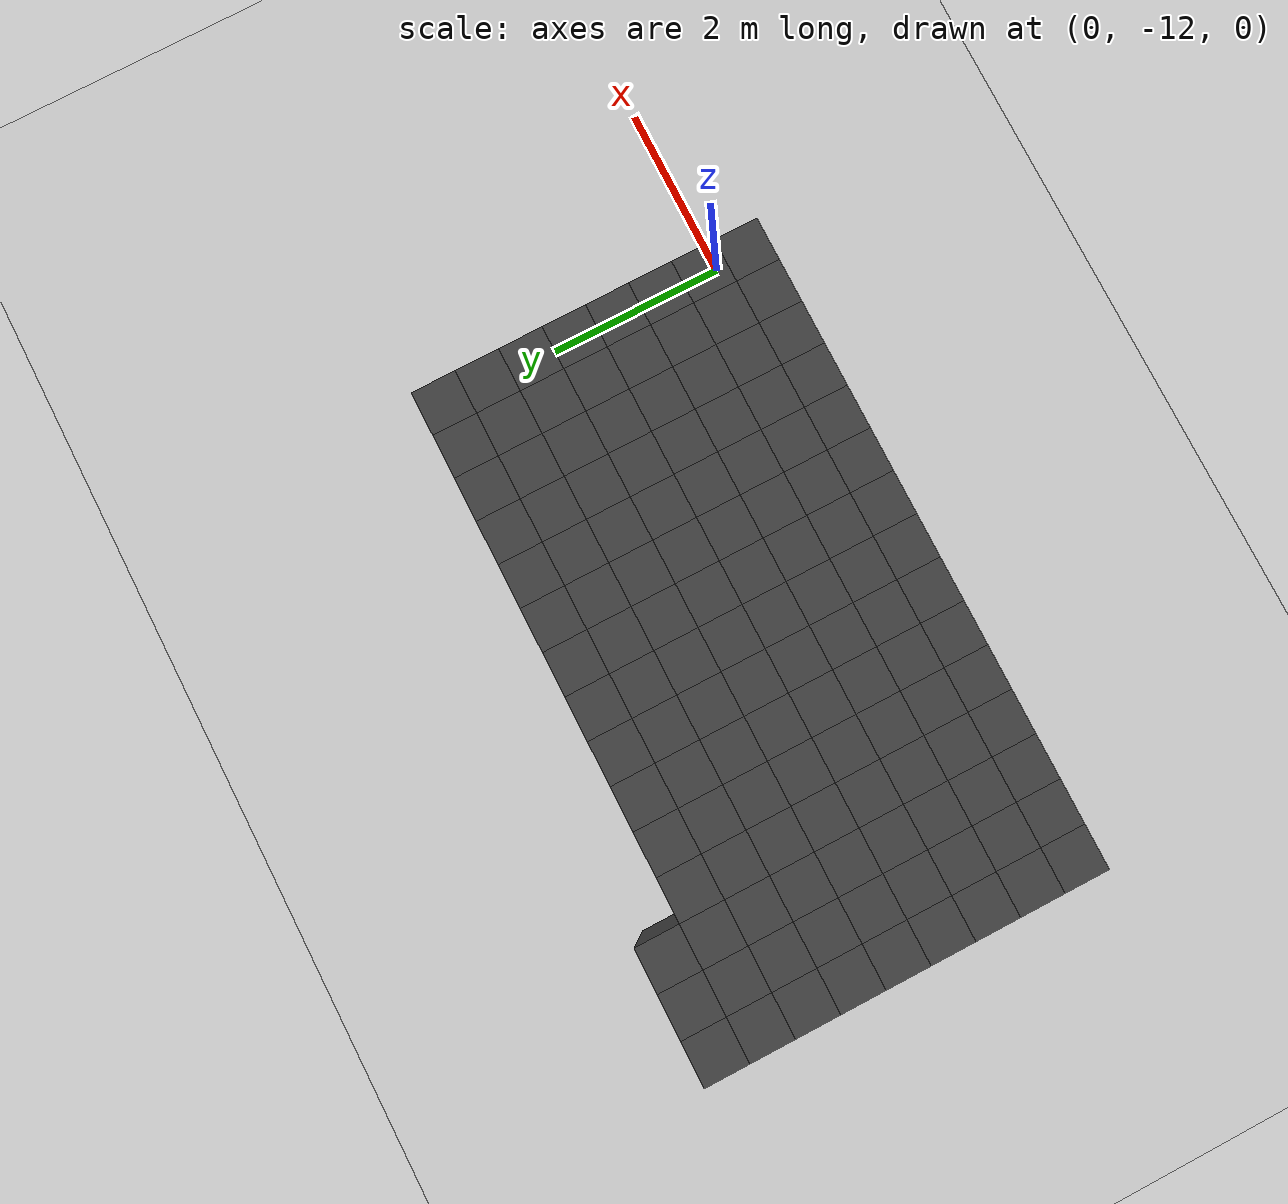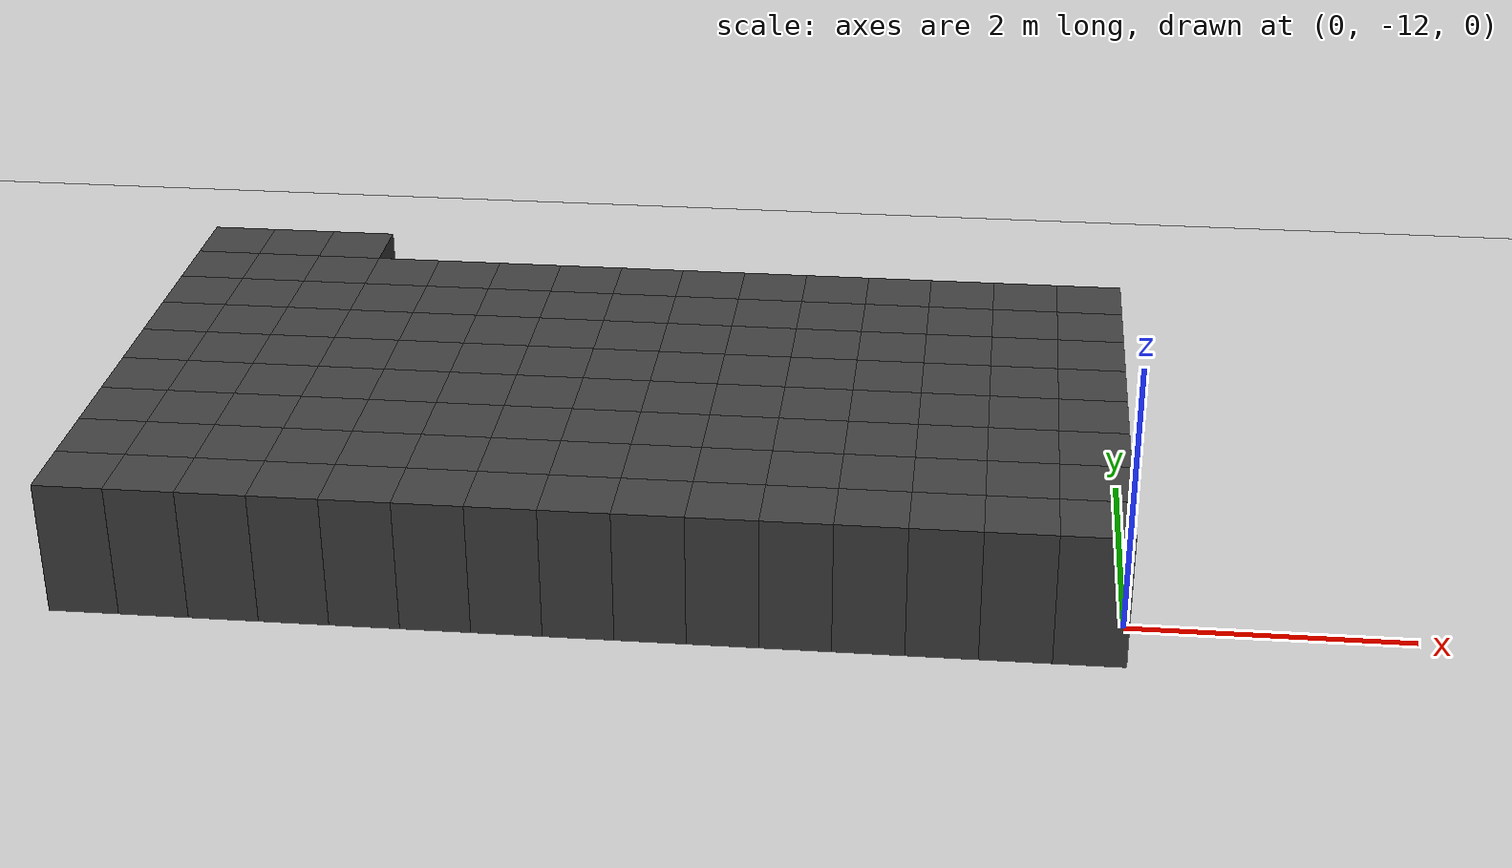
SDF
<sdf version="1.7">
 <world name="map_13820">
  <model name="ground_plane">
   <static>true</static>
   <link name="link">
    <collision name="collision">
     <geometry><plane><normal>0 0 1</normal><size>200 200</size></plane></geometry>
    </collision>
    <visual name="visual">
     <geometry><plane><normal>0 0 1</normal><size>200 200</size></plane></geometry>
     <material><ambient>0.8 0.8 0.8 1</ambient><diffuse>0.8 0.8 0.8 1</diffuse></material>
    </visual>
   </link>
  </model>
  <model name="maze_environment">
   <static>true</static>
   <link name="wall_1441">
    <pose>-7.250 -8.250 0.500 0 0 0</pose>
    <collision name="col"><geometry><box><size>0.5 0.5 1.0</size></box></geometry></collision>
    <visual name="vis">
     <geometry><box><size>0.5 0.5 1.0</size></box></geometry>
     <material><ambient>0.15 0.15 0.15 1</ambient><diffuse>0.25 0.25 0.25 1</diffuse></material>
    </visual>
   </link>
   <link name="wall_1442">
    <pose>-6.750 -8.250 0.500 0 0 0</pose>
    <collision name="col"><geometry><box><size>0.5 0.5 1.0</size></box></geometry></collision>
    <visual name="vis">
     <geometry><box><size>0.5 0.5 1.0</size></box></geometry>
     <material><ambient>0.15 0.15 0.15 1</ambient><diffuse>0.25 0.25 0.25 1</diffuse></material>
    </visual>
   </link>
   <link name="wall_1443">
    <pose>-6.250 -8.250 0.500 0 0 0</pose>
    <collision name="col"><geometry><box><size>0.5 0.5 1.0</size></box></geometry></collision>
    <visual name="vis">
     <geometry><box><size>0.5 0.5 1.0</size></box></geometry>
     <material><ambient>0.15 0.15 0.15 1</ambient><diffuse>0.25 0.25 0.25 1</diffuse></material>
    </visual>
   </link>
   <link name="wall_1490">
    <pose>-7.250 -8.750 0.500 0 0 0</pose>
    <collision name="col"><geometry><box><size>0.5 0.5 1.0</size></box></geometry></collision>
    <visual name="vis">
     <geometry><box><size>0.5 0.5 1.0</size></box></geometry>
     <material><ambient>0.15 0.15 0.15 1</ambient><diffuse>0.25 0.25 0.25 1</diffuse></material>
    </visual>
   </link>
   <link name="wall_1491">
    <pose>-6.750 -8.750 0.500 0 0 0</pose>
    <collision name="col"><geometry><box><size>0.5 0.5 1.0</size></box></geometry></collision>
    <visual name="vis">
     <geometry><box><size>0.5 0.5 1.0</size></box></geometry>
     <material><ambient>0.15 0.15 0.15 1</ambient><diffuse>0.25 0.25 0.25 1</diffuse></material>
    </visual>
   </link>
   <link name="wall_1492">
    <pose>-6.250 -8.750 0.500 0 0 0</pose>
    <collision name="col"><geometry><box><size>0.5 0.5 1.0</size></box></geometry></collision>
    <visual name="vis">
     <geometry><box><size>0.5 0.5 1.0</size></box></geometry>
     <material><ambient>0.15 0.15 0.15 1</ambient><diffuse>0.25 0.25 0.25 1</diffuse></material>
    </visual>
   </link>
   <link name="wall_1493">
    <pose>-5.750 -8.750 0.500 0 0 0</pose>
    <collision name="col"><geometry><box><size>0.5 0.5 1.0</size></box></geometry></collision>
    <visual name="vis">
     <geometry><box><size>0.5 0.5 1.0</size></box></geometry>
     <material><ambient>0.15 0.15 0.15 1</ambient><diffuse>0.25 0.25 0.25 1</diffuse></material>
    </visual>
   </link>
   <link name="wall_1494">
    <pose>-5.250 -8.750 0.500 0 0 0</pose>
    <collision name="col"><geometry><box><size>0.5 0.5 1.0</size></box></geometry></collision>
    <visual name="vis">
     <geometry><box><size>0.5 0.5 1.0</size></box></geometry>
     <material><ambient>0.15 0.15 0.15 1</ambient><diffuse>0.25 0.25 0.25 1</diffuse></material>
    </visual>
   </link>
   <link name="wall_1495">
    <pose>-4.750 -8.750 0.500 0 0 0</pose>
    <collision name="col"><geometry><box><size>0.5 0.5 1.0</size></box></geometry></collision>
    <visual name="vis">
     <geometry><box><size>0.5 0.5 1.0</size></box></geometry>
     <material><ambient>0.15 0.15 0.15 1</ambient><diffuse>0.25 0.25 0.25 1</diffuse></material>
    </visual>
   </link>
   <link name="wall_1496">
    <pose>-4.250 -8.750 0.500 0 0 0</pose>
    <collision name="col"><geometry><box><size>0.5 0.5 1.0</size></box></geometry></collision>
    <visual name="vis">
     <geometry><box><size>0.5 0.5 1.0</size></box></geometry>
     <material><ambient>0.15 0.15 0.15 1</ambient><diffuse>0.25 0.25 0.25 1</diffuse></material>
    </visual>
   </link>
   <link name="wall_1497">
    <pose>-3.750 -8.750 0.500 0 0 0</pose>
    <collision name="col"><geometry><box><size>0.5 0.5 1.0</size></box></geometry></collision>
    <visual name="vis">
     <geometry><box><size>0.5 0.5 1.0</size></box></geometry>
     <material><ambient>0.15 0.15 0.15 1</ambient><diffuse>0.25 0.25 0.25 1</diffuse></material>
    </visual>
   </link>
   <link name="wall_1498">
    <pose>-3.250 -8.750 0.500 0 0 0</pose>
    <collision name="col"><geometry><box><size>0.5 0.5 1.0</size></box></geometry></collision>
    <visual name="vis">
     <geometry><box><size>0.5 0.5 1.0</size></box></geometry>
     <material><ambient>0.15 0.15 0.15 1</ambient><diffuse>0.25 0.25 0.25 1</diffuse></material>
    </visual>
   </link>
   <link name="wall_1499">
    <pose>-2.750 -8.750 0.500 0 0 0</pose>
    <collision name="col"><geometry><box><size>0.5 0.5 1.0</size></box></geometry></collision>
    <visual name="vis">
     <geometry><box><size>0.5 0.5 1.0</size></box></geometry>
     <material><ambient>0.15 0.15 0.15 1</ambient><diffuse>0.25 0.25 0.25 1</diffuse></material>
    </visual>
   </link>
   <link name="wall_1500">
    <pose>-2.250 -8.750 0.500 0 0 0</pose>
    <collision name="col"><geometry><box><size>0.5 0.5 1.0</size></box></geometry></collision>
    <visual name="vis">
     <geometry><box><size>0.5 0.5 1.0</size></box></geometry>
     <material><ambient>0.15 0.15 0.15 1</ambient><diffuse>0.25 0.25 0.25 1</diffuse></material>
    </visual>
   </link>
   <link name="wall_1501">
    <pose>-1.750 -8.750 0.500 0 0 0</pose>
    <collision name="col"><geometry><box><size>0.5 0.5 1.0</size></box></geometry></collision>
    <visual name="vis">
     <geometry><box><size>0.5 0.5 1.0</size></box></geometry>
     <material><ambient>0.15 0.15 0.15 1</ambient><diffuse>0.25 0.25 0.25 1</diffuse></material>
    </visual>
   </link>
   <link name="wall_1502">
    <pose>-1.250 -8.750 0.500 0 0 0</pose>
    <collision name="col"><geometry><box><size>0.5 0.5 1.0</size></box></geometry></collision>
    <visual name="vis">
     <geometry><box><size>0.5 0.5 1.0</size></box></geometry>
     <material><ambient>0.15 0.15 0.15 1</ambient><diffuse>0.25 0.25 0.25 1</diffuse></material>
    </visual>
   </link>
   <link name="wall_1503">
    <pose>-0.750 -8.750 0.500 0 0 0</pose>
    <collision name="col"><geometry><box><size>0.5 0.5 1.0</size></box></geometry></collision>
    <visual name="vis">
     <geometry><box><size>0.5 0.5 1.0</size></box></geometry>
     <material><ambient>0.15 0.15 0.15 1</ambient><diffuse>0.25 0.25 0.25 1</diffuse></material>
    </visual>
   </link>
   <link name="wall_1504">
    <pose>-0.250 -8.750 0.500 0 0 0</pose>
    <collision name="col"><geometry><box><size>0.5 0.5 1.0</size></box></geometry></collision>
    <visual name="vis">
     <geometry><box><size>0.5 0.5 1.0</size></box></geometry>
     <material><ambient>0.15 0.15 0.15 1</ambient><diffuse>0.25 0.25 0.25 1</diffuse></material>
    </visual>
   </link>
   <link name="wall_1539">
    <pose>-7.250 -9.250 0.500 0 0 0</pose>
    <collision name="col"><geometry><box><size>0.5 0.5 1.0</size></box></geometry></collision>
    <visual name="vis">
     <geometry><box><size>0.5 0.5 1.0</size></box></geometry>
     <material><ambient>0.15 0.15 0.15 1</ambient><diffuse>0.25 0.25 0.25 1</diffuse></material>
    </visual>
   </link>
   <link name="wall_1540">
    <pose>-6.750 -9.250 0.500 0 0 0</pose>
    <collision name="col"><geometry><box><size>0.5 0.5 1.0</size></box></geometry></collision>
    <visual name="vis">
     <geometry><box><size>0.5 0.5 1.0</size></box></geometry>
     <material><ambient>0.15 0.15 0.15 1</ambient><diffuse>0.25 0.25 0.25 1</diffuse></material>
    </visual>
   </link>
   <link name="wall_1541">
    <pose>-6.250 -9.250 0.500 0 0 0</pose>
    <collision name="col"><geometry><box><size>0.5 0.5 1.0</size></box></geometry></collision>
    <visual name="vis">
     <geometry><box><size>0.5 0.5 1.0</size></box></geometry>
     <material><ambient>0.15 0.15 0.15 1</ambient><diffuse>0.25 0.25 0.25 1</diffuse></material>
    </visual>
   </link>
   <link name="wall_1542">
    <pose>-5.750 -9.250 0.500 0 0 0</pose>
    <collision name="col"><geometry><box><size>0.5 0.5 1.0</size></box></geometry></collision>
    <visual name="vis">
     <geometry><box><size>0.5 0.5 1.0</size></box></geometry>
     <material><ambient>0.15 0.15 0.15 1</ambient><diffuse>0.25 0.25 0.25 1</diffuse></material>
    </visual>
   </link>
   <link name="wall_1543">
    <pose>-5.250 -9.250 0.500 0 0 0</pose>
    <collision name="col"><geometry><box><size>0.5 0.5 1.0</size></box></geometry></collision>
    <visual name="vis">
     <geometry><box><size>0.5 0.5 1.0</size></box></geometry>
     <material><ambient>0.15 0.15 0.15 1</ambient><diffuse>0.25 0.25 0.25 1</diffuse></material>
    </visual>
   </link>
   <link name="wall_1544">
    <pose>-4.750 -9.250 0.500 0 0 0</pose>
    <collision name="col"><geometry><box><size>0.5 0.5 1.0</size></box></geometry></collision>
    <visual name="vis">
     <geometry><box><size>0.5 0.5 1.0</size></box></geometry>
     <material><ambient>0.15 0.15 0.15 1</ambient><diffuse>0.25 0.25 0.25 1</diffuse></material>
    </visual>
   </link>
   <link name="wall_1545">
    <pose>-4.250 -9.250 0.500 0 0 0</pose>
    <collision name="col"><geometry><box><size>0.5 0.5 1.0</size></box></geometry></collision>
    <visual name="vis">
     <geometry><box><size>0.5 0.5 1.0</size></box></geometry>
     <material><ambient>0.15 0.15 0.15 1</ambient><diffuse>0.25 0.25 0.25 1</diffuse></material>
    </visual>
   </link>
   <link name="wall_1546">
    <pose>-3.750 -9.250 0.500 0 0 0</pose>
    <collision name="col"><geometry><box><size>0.5 0.5 1.0</size></box></geometry></collision>
    <visual name="vis">
     <geometry><box><size>0.5 0.5 1.0</size></box></geometry>
     <material><ambient>0.15 0.15 0.15 1</ambient><diffuse>0.25 0.25 0.25 1</diffuse></material>
    </visual>
   </link>
   <link name="wall_1547">
    <pose>-3.250 -9.250 0.500 0 0 0</pose>
    <collision name="col"><geometry><box><size>0.5 0.5 1.0</size></box></geometry></collision>
    <visual name="vis">
     <geometry><box><size>0.5 0.5 1.0</size></box></geometry>
     <material><ambient>0.15 0.15 0.15 1</ambient><diffuse>0.25 0.25 0.25 1</diffuse></material>
    </visual>
   </link>
   <link name="wall_1548">
    <pose>-2.750 -9.250 0.500 0 0 0</pose>
    <collision name="col"><geometry><box><size>0.5 0.5 1.0</size></box></geometry></collision>
    <visual name="vis">
     <geometry><box><size>0.5 0.5 1.0</size></box></geometry>
     <material><ambient>0.15 0.15 0.15 1</ambient><diffuse>0.25 0.25 0.25 1</diffuse></material>
    </visual>
   </link>
   <link name="wall_1549">
    <pose>-2.250 -9.250 0.500 0 0 0</pose>
    <collision name="col"><geometry><box><size>0.5 0.5 1.0</size></box></geometry></collision>
    <visual name="vis">
     <geometry><box><size>0.5 0.5 1.0</size></box></geometry>
     <material><ambient>0.15 0.15 0.15 1</ambient><diffuse>0.25 0.25 0.25 1</diffuse></material>
    </visual>
   </link>
   <link name="wall_1550">
    <pose>-1.750 -9.250 0.500 0 0 0</pose>
    <collision name="col"><geometry><box><size>0.5 0.5 1.0</size></box></geometry></collision>
    <visual name="vis">
     <geometry><box><size>0.5 0.5 1.0</size></box></geometry>
     <material><ambient>0.15 0.15 0.15 1</ambient><diffuse>0.25 0.25 0.25 1</diffuse></material>
    </visual>
   </link>
   <link name="wall_1551">
    <pose>-1.250 -9.250 0.500 0 0 0</pose>
    <collision name="col"><geometry><box><size>0.5 0.5 1.0</size></box></geometry></collision>
    <visual name="vis">
     <geometry><box><size>0.5 0.5 1.0</size></box></geometry>
     <material><ambient>0.15 0.15 0.15 1</ambient><diffuse>0.25 0.25 0.25 1</diffuse></material>
    </visual>
   </link>
   <link name="wall_1552">
    <pose>-0.750 -9.250 0.500 0 0 0</pose>
    <collision name="col"><geometry><box><size>0.5 0.5 1.0</size></box></geometry></collision>
    <visual name="vis">
     <geometry><box><size>0.5 0.5 1.0</size></box></geometry>
     <material><ambient>0.15 0.15 0.15 1</ambient><diffuse>0.25 0.25 0.25 1</diffuse></material>
    </visual>
   </link>
   <link name="wall_1553">
    <pose>-0.250 -9.250 0.500 0 0 0</pose>
    <collision name="col"><geometry><box><size>0.5 0.5 1.0</size></box></geometry></collision>
    <visual name="vis">
     <geometry><box><size>0.5 0.5 1.0</size></box></geometry>
     <material><ambient>0.15 0.15 0.15 1</ambient><diffuse>0.25 0.25 0.25 1</diffuse></material>
    </visual>
   </link>
   <link name="wall_1588">
    <pose>-7.250 -9.750 0.500 0 0 0</pose>
    <collision name="col"><geometry><box><size>0.5 0.5 1.0</size></box></geometry></collision>
    <visual name="vis">
     <geometry><box><size>0.5 0.5 1.0</size></box></geometry>
     <material><ambient>0.15 0.15 0.15 1</ambient><diffuse>0.25 0.25 0.25 1</diffuse></material>
    </visual>
   </link>
   <link name="wall_1589">
    <pose>-6.750 -9.750 0.500 0 0 0</pose>
    <collision name="col"><geometry><box><size>0.5 0.5 1.0</size></box></geometry></collision>
    <visual name="vis">
     <geometry><box><size>0.5 0.5 1.0</size></box></geometry>
     <material><ambient>0.15 0.15 0.15 1</ambient><diffuse>0.25 0.25 0.25 1</diffuse></material>
    </visual>
   </link>
   <link name="wall_1590">
    <pose>-6.250 -9.750 0.500 0 0 0</pose>
    <collision name="col"><geometry><box><size>0.5 0.5 1.0</size></box></geometry></collision>
    <visual name="vis">
     <geometry><box><size>0.5 0.5 1.0</size></box></geometry>
     <material><ambient>0.15 0.15 0.15 1</ambient><diffuse>0.25 0.25 0.25 1</diffuse></material>
    </visual>
   </link>
   <link name="wall_1591">
    <pose>-5.750 -9.750 0.500 0 0 0</pose>
    <collision name="col"><geometry><box><size>0.5 0.5 1.0</size></box></geometry></collision>
    <visual name="vis">
     <geometry><box><size>0.5 0.5 1.0</size></box></geometry>
     <material><ambient>0.15 0.15 0.15 1</ambient><diffuse>0.25 0.25 0.25 1</diffuse></material>
    </visual>
   </link>
   <link name="wall_1592">
    <pose>-5.250 -9.750 0.500 0 0 0</pose>
    <collision name="col"><geometry><box><size>0.5 0.5 1.0</size></box></geometry></collision>
    <visual name="vis">
     <geometry><box><size>0.5 0.5 1.0</size></box></geometry>
     <material><ambient>0.15 0.15 0.15 1</ambient><diffuse>0.25 0.25 0.25 1</diffuse></material>
    </visual>
   </link>
   <link name="wall_1593">
    <pose>-4.750 -9.750 0.500 0 0 0</pose>
    <collision name="col"><geometry><box><size>0.5 0.5 1.0</size></box></geometry></collision>
    <visual name="vis">
     <geometry><box><size>0.5 0.5 1.0</size></box></geometry>
     <material><ambient>0.15 0.15 0.15 1</ambient><diffuse>0.25 0.25 0.25 1</diffuse></material>
    </visual>
   </link>
   <link name="wall_1594">
    <pose>-4.250 -9.750 0.500 0 0 0</pose>
    <collision name="col"><geometry><box><size>0.5 0.5 1.0</size></box></geometry></collision>
    <visual name="vis">
     <geometry><box><size>0.5 0.5 1.0</size></box></geometry>
     <material><ambient>0.15 0.15 0.15 1</ambient><diffuse>0.25 0.25 0.25 1</diffuse></material>
    </visual>
   </link>
   <link name="wall_1595">
    <pose>-3.750 -9.750 0.500 0 0 0</pose>
    <collision name="col"><geometry><box><size>0.5 0.5 1.0</size></box></geometry></collision>
    <visual name="vis">
     <geometry><box><size>0.5 0.5 1.0</size></box></geometry>
     <material><ambient>0.15 0.15 0.15 1</ambient><diffuse>0.25 0.25 0.25 1</diffuse></material>
    </visual>
   </link>
   <link name="wall_1596">
    <pose>-3.250 -9.750 0.500 0 0 0</pose>
    <collision name="col"><geometry><box><size>0.5 0.5 1.0</size></box></geometry></collision>
    <visual name="vis">
     <geometry><box><size>0.5 0.5 1.0</size></box></geometry>
     <material><ambient>0.15 0.15 0.15 1</ambient><diffuse>0.25 0.25 0.25 1</diffuse></material>
    </visual>
   </link>
   <link name="wall_1597">
    <pose>-2.750 -9.750 0.500 0 0 0</pose>
    <collision name="col"><geometry><box><size>0.5 0.5 1.0</size></box></geometry></collision>
    <visual name="vis">
     <geometry><box><size>0.5 0.5 1.0</size></box></geometry>
     <material><ambient>0.15 0.15 0.15 1</ambient><diffuse>0.25 0.25 0.25 1</diffuse></material>
    </visual>
   </link>
   <link name="wall_1598">
    <pose>-2.250 -9.750 0.500 0 0 0</pose>
    <collision name="col"><geometry><box><size>0.5 0.5 1.0</size></box></geometry></collision>
    <visual name="vis">
     <geometry><box><size>0.5 0.5 1.0</size></box></geometry>
     <material><ambient>0.15 0.15 0.15 1</ambient><diffuse>0.25 0.25 0.25 1</diffuse></material>
    </visual>
   </link>
   <link name="wall_1599">
    <pose>-1.750 -9.750 0.500 0 0 0</pose>
    <collision name="col"><geometry><box><size>0.5 0.5 1.0</size></box></geometry></collision>
    <visual name="vis">
     <geometry><box><size>0.5 0.5 1.0</size></box></geometry>
     <material><ambient>0.15 0.15 0.15 1</ambient><diffuse>0.25 0.25 0.25 1</diffuse></material>
    </visual>
   </link>
   <link name="wall_1600">
    <pose>-1.250 -9.750 0.500 0 0 0</pose>
    <collision name="col"><geometry><box><size>0.5 0.5 1.0</size></box></geometry></collision>
    <visual name="vis">
     <geometry><box><size>0.5 0.5 1.0</size></box></geometry>
     <material><ambient>0.15 0.15 0.15 1</ambient><diffuse>0.25 0.25 0.25 1</diffuse></material>
    </visual>
   </link>
   <link name="wall_1601">
    <pose>-0.750 -9.750 0.500 0 0 0</pose>
    <collision name="col"><geometry><box><size>0.5 0.5 1.0</size></box></geometry></collision>
    <visual name="vis">
     <geometry><box><size>0.5 0.5 1.0</size></box></geometry>
     <material><ambient>0.15 0.15 0.15 1</ambient><diffuse>0.25 0.25 0.25 1</diffuse></material>
    </visual>
   </link>
   <link name="wall_1602">
    <pose>-0.250 -9.750 0.500 0 0 0</pose>
    <collision name="col"><geometry><box><size>0.5 0.5 1.0</size></box></geometry></collision>
    <visual name="vis">
     <geometry><box><size>0.5 0.5 1.0</size></box></geometry>
     <material><ambient>0.15 0.15 0.15 1</ambient><diffuse>0.25 0.25 0.25 1</diffuse></material>
    </visual>
   </link>
   <link name="wall_1637">
    <pose>-7.250 -10.250 0.500 0 0 0</pose>
    <collision name="col"><geometry><box><size>0.5 0.5 1.0</size></box></geometry></collision>
    <visual name="vis">
     <geometry><box><size>0.5 0.5 1.0</size></box></geometry>
     <material><ambient>0.15 0.15 0.15 1</ambient><diffuse>0.25 0.25 0.25 1</diffuse></material>
    </visual>
   </link>
   <link name="wall_1638">
    <pose>-6.750 -10.250 0.500 0 0 0</pose>
    <collision name="col"><geometry><box><size>0.5 0.5 1.0</size></box></geometry></collision>
    <visual name="vis">
     <geometry><box><size>0.5 0.5 1.0</size></box></geometry>
     <material><ambient>0.15 0.15 0.15 1</ambient><diffuse>0.25 0.25 0.25 1</diffuse></material>
    </visual>
   </link>
   <link name="wall_1639">
    <pose>-6.250 -10.250 0.500 0 0 0</pose>
    <collision name="col"><geometry><box><size>0.5 0.5 1.0</size></box></geometry></collision>
    <visual name="vis">
     <geometry><box><size>0.5 0.5 1.0</size></box></geometry>
     <material><ambient>0.15 0.15 0.15 1</ambient><diffuse>0.25 0.25 0.25 1</diffuse></material>
    </visual>
   </link>
   <link name="wall_1640">
    <pose>-5.750 -10.250 0.500 0 0 0</pose>
    <collision name="col"><geometry><box><size>0.5 0.5 1.0</size></box></geometry></collision>
    <visual name="vis">
     <geometry><box><size>0.5 0.5 1.0</size></box></geometry>
     <material><ambient>0.15 0.15 0.15 1</ambient><diffuse>0.25 0.25 0.25 1</diffuse></material>
    </visual>
   </link>
   <link name="wall_1641">
    <pose>-5.250 -10.250 0.500 0 0 0</pose>
    <collision name="col"><geometry><box><size>0.5 0.5 1.0</size></box></geometry></collision>
    <visual name="vis">
     <geometry><box><size>0.5 0.5 1.0</size></box></geometry>
     <material><ambient>0.15 0.15 0.15 1</ambient><diffuse>0.25 0.25 0.25 1</diffuse></material>
    </visual>
   </link>
   <link name="wall_1642">
    <pose>-4.750 -10.250 0.500 0 0 0</pose>
    <collision name="col"><geometry><box><size>0.5 0.5 1.0</size></box></geometry></collision>
    <visual name="vis">
     <geometry><box><size>0.5 0.5 1.0</size></box></geometry>
     <material><ambient>0.15 0.15 0.15 1</ambient><diffuse>0.25 0.25 0.25 1</diffuse></material>
    </visual>
   </link>
   <link name="wall_1643">
    <pose>-4.250 -10.250 0.500 0 0 0</pose>
    <collision name="col"><geometry><box><size>0.5 0.5 1.0</size></box></geometry></collision>
    <visual name="vis">
     <geometry><box><size>0.5 0.5 1.0</size></box></geometry>
     <material><ambient>0.15 0.15 0.15 1</ambient><diffuse>0.25 0.25 0.25 1</diffuse></material>
    </visual>
   </link>
   <link name="wall_1644">
    <pose>-3.750 -10.250 0.500 0 0 0</pose>
    <collision name="col"><geometry><box><size>0.5 0.5 1.0</size></box></geometry></collision>
    <visual name="vis">
     <geometry><box><size>0.5 0.5 1.0</size></box></geometry>
     <material><ambient>0.15 0.15 0.15 1</ambient><diffuse>0.25 0.25 0.25 1</diffuse></material>
    </visual>
   </link>
   <link name="wall_1645">
    <pose>-3.250 -10.250 0.500 0 0 0</pose>
    <collision name="col"><geometry><box><size>0.5 0.5 1.0</size></box></geometry></collision>
    <visual name="vis">
     <geometry><box><size>0.5 0.5 1.0</size></box></geometry>
     <material><ambient>0.15 0.15 0.15 1</ambient><diffuse>0.25 0.25 0.25 1</diffuse></material>
    </visual>
   </link>
   <link name="wall_1646">
    <pose>-2.750 -10.250 0.500 0 0 0</pose>
    <collision name="col"><geometry><box><size>0.5 0.5 1.0</size></box></geometry></collision>
    <visual name="vis">
     <geometry><box><size>0.5 0.5 1.0</size></box></geometry>
     <material><ambient>0.15 0.15 0.15 1</ambient><diffuse>0.25 0.25 0.25 1</diffuse></material>
    </visual>
   </link>
   <link name="wall_1647">
    <pose>-2.250 -10.250 0.500 0 0 0</pose>
    <collision name="col"><geometry><box><size>0.5 0.5 1.0</size></box></geometry></collision>
    <visual name="vis">
     <geometry><box><size>0.5 0.5 1.0</size></box></geometry>
     <material><ambient>0.15 0.15 0.15 1</ambient><diffuse>0.25 0.25 0.25 1</diffuse></material>
    </visual>
   </link>
   <link name="wall_1648">
    <pose>-1.750 -10.250 0.500 0 0 0</pose>
    <collision name="col"><geometry><box><size>0.5 0.5 1.0</size></box></geometry></collision>
    <visual name="vis">
     <geometry><box><size>0.5 0.5 1.0</size></box></geometry>
     <material><ambient>0.15 0.15 0.15 1</ambient><diffuse>0.25 0.25 0.25 1</diffuse></material>
    </visual>
   </link>
   <link name="wall_1649">
    <pose>-1.250 -10.250 0.500 0 0 0</pose>
    <collision name="col"><geometry><box><size>0.5 0.5 1.0</size></box></geometry></collision>
    <visual name="vis">
     <geometry><box><size>0.5 0.5 1.0</size></box></geometry>
     <material><ambient>0.15 0.15 0.15 1</ambient><diffuse>0.25 0.25 0.25 1</diffuse></material>
    </visual>
   </link>
   <link name="wall_1650">
    <pose>-0.750 -10.250 0.500 0 0 0</pose>
    <collision name="col"><geometry><box><size>0.5 0.5 1.0</size></box></geometry></collision>
    <visual name="vis">
     <geometry><box><size>0.5 0.5 1.0</size></box></geometry>
     <material><ambient>0.15 0.15 0.15 1</ambient><diffuse>0.25 0.25 0.25 1</diffuse></material>
    </visual>
   </link>
   <link name="wall_1651">
    <pose>-0.250 -10.250 0.500 0 0 0</pose>
    <collision name="col"><geometry><box><size>0.5 0.5 1.0</size></box></geometry></collision>
    <visual name="vis">
     <geometry><box><size>0.5 0.5 1.0</size></box></geometry>
     <material><ambient>0.15 0.15 0.15 1</ambient><diffuse>0.25 0.25 0.25 1</diffuse></material>
    </visual>
   </link>
   <link name="wall_1686">
    <pose>-7.250 -10.750 0.500 0 0 0</pose>
    <collision name="col"><geometry><box><size>0.5 0.5 1.0</size></box></geometry></collision>
    <visual name="vis">
     <geometry><box><size>0.5 0.5 1.0</size></box></geometry>
     <material><ambient>0.15 0.15 0.15 1</ambient><diffuse>0.25 0.25 0.25 1</diffuse></material>
    </visual>
   </link>
   <link name="wall_1687">
    <pose>-6.750 -10.750 0.500 0 0 0</pose>
    <collision name="col"><geometry><box><size>0.5 0.5 1.0</size></box></geometry></collision>
    <visual name="vis">
     <geometry><box><size>0.5 0.5 1.0</size></box></geometry>
     <material><ambient>0.15 0.15 0.15 1</ambient><diffuse>0.25 0.25 0.25 1</diffuse></material>
    </visual>
   </link>
   <link name="wall_1688">
    <pose>-6.250 -10.750 0.500 0 0 0</pose>
    <collision name="col"><geometry><box><size>0.5 0.5 1.0</size></box></geometry></collision>
    <visual name="vis">
     <geometry><box><size>0.5 0.5 1.0</size></box></geometry>
     <material><ambient>0.15 0.15 0.15 1</ambient><diffuse>0.25 0.25 0.25 1</diffuse></material>
    </visual>
   </link>
   <link name="wall_1689">
    <pose>-5.750 -10.750 0.500 0 0 0</pose>
    <collision name="col"><geometry><box><size>0.5 0.5 1.0</size></box></geometry></collision>
    <visual name="vis">
     <geometry><box><size>0.5 0.5 1.0</size></box></geometry>
     <material><ambient>0.15 0.15 0.15 1</ambient><diffuse>0.25 0.25 0.25 1</diffuse></material>
    </visual>
   </link>
   <link name="wall_1690">
    <pose>-5.250 -10.750 0.500 0 0 0</pose>
    <collision name="col"><geometry><box><size>0.5 0.5 1.0</size></box></geometry></collision>
    <visual name="vis">
     <geometry><box><size>0.5 0.5 1.0</size></box></geometry>
     <material><ambient>0.15 0.15 0.15 1</ambient><diffuse>0.25 0.25 0.25 1</diffuse></material>
    </visual>
   </link>
   <link name="wall_1691">
    <pose>-4.750 -10.750 0.500 0 0 0</pose>
    <collision name="col"><geometry><box><size>0.5 0.5 1.0</size></box></geometry></collision>
    <visual name="vis">
     <geometry><box><size>0.5 0.5 1.0</size></box></geometry>
     <material><ambient>0.15 0.15 0.15 1</ambient><diffuse>0.25 0.25 0.25 1</diffuse></material>
    </visual>
   </link>
   <link name="wall_1692">
    <pose>-4.250 -10.750 0.500 0 0 0</pose>
    <collision name="col"><geometry><box><size>0.5 0.5 1.0</size></box></geometry></collision>
    <visual name="vis">
     <geometry><box><size>0.5 0.5 1.0</size></box></geometry>
     <material><ambient>0.15 0.15 0.15 1</ambient><diffuse>0.25 0.25 0.25 1</diffuse></material>
    </visual>
   </link>
   <link name="wall_1693">
    <pose>-3.750 -10.750 0.500 0 0 0</pose>
    <collision name="col"><geometry><box><size>0.5 0.5 1.0</size></box></geometry></collision>
    <visual name="vis">
     <geometry><box><size>0.5 0.5 1.0</size></box></geometry>
     <material><ambient>0.15 0.15 0.15 1</ambient><diffuse>0.25 0.25 0.25 1</diffuse></material>
    </visual>
   </link>
   <link name="wall_1694">
    <pose>-3.250 -10.750 0.500 0 0 0</pose>
    <collision name="col"><geometry><box><size>0.5 0.5 1.0</size></box></geometry></collision>
    <visual name="vis">
     <geometry><box><size>0.5 0.5 1.0</size></box></geometry>
     <material><ambient>0.15 0.15 0.15 1</ambient><diffuse>0.25 0.25 0.25 1</diffuse></material>
    </visual>
   </link>
   <link name="wall_1695">
    <pose>-2.750 -10.750 0.500 0 0 0</pose>
    <collision name="col"><geometry><box><size>0.5 0.5 1.0</size></box></geometry></collision>
    <visual name="vis">
     <geometry><box><size>0.5 0.5 1.0</size></box></geometry>
     <material><ambient>0.15 0.15 0.15 1</ambient><diffuse>0.25 0.25 0.25 1</diffuse></material>
    </visual>
   </link>
   <link name="wall_1696">
    <pose>-2.250 -10.750 0.500 0 0 0</pose>
    <collision name="col"><geometry><box><size>0.5 0.5 1.0</size></box></geometry></collision>
    <visual name="vis">
     <geometry><box><size>0.5 0.5 1.0</size></box></geometry>
     <material><ambient>0.15 0.15 0.15 1</ambient><diffuse>0.25 0.25 0.25 1</diffuse></material>
    </visual>
   </link>
   <link name="wall_1697">
    <pose>-1.750 -10.750 0.500 0 0 0</pose>
    <collision name="col"><geometry><box><size>0.5 0.5 1.0</size></box></geometry></collision>
    <visual name="vis">
     <geometry><box><size>0.5 0.5 1.0</size></box></geometry>
     <material><ambient>0.15 0.15 0.15 1</ambient><diffuse>0.25 0.25 0.25 1</diffuse></material>
    </visual>
   </link>
   <link name="wall_1698">
    <pose>-1.250 -10.750 0.500 0 0 0</pose>
    <collision name="col"><geometry><box><size>0.5 0.5 1.0</size></box></geometry></collision>
    <visual name="vis">
     <geometry><box><size>0.5 0.5 1.0</size></box></geometry>
     <material><ambient>0.15 0.15 0.15 1</ambient><diffuse>0.25 0.25 0.25 1</diffuse></material>
    </visual>
   </link>
   <link name="wall_1699">
    <pose>-0.750 -10.750 0.500 0 0 0</pose>
    <collision name="col"><geometry><box><size>0.5 0.5 1.0</size></box></geometry></collision>
    <visual name="vis">
     <geometry><box><size>0.5 0.5 1.0</size></box></geometry>
     <material><ambient>0.15 0.15 0.15 1</ambient><diffuse>0.25 0.25 0.25 1</diffuse></material>
    </visual>
   </link>
   <link name="wall_1700">
    <pose>-0.250 -10.750 0.500 0 0 0</pose>
    <collision name="col"><geometry><box><size>0.5 0.5 1.0</size></box></geometry></collision>
    <visual name="vis">
     <geometry><box><size>0.5 0.5 1.0</size></box></geometry>
     <material><ambient>0.15 0.15 0.15 1</ambient><diffuse>0.25 0.25 0.25 1</diffuse></material>
    </visual>
   </link>
   <link name="wall_1732">
    <pose>-7.250 -11.250 0.500 0 0 0</pose>
    <collision name="col"><geometry><box><size>0.5 0.5 1.0</size></box></geometry></collision>
    <visual name="vis">
     <geometry><box><size>0.5 0.5 1.0</size></box></geometry>
     <material><ambient>0.15 0.15 0.15 1</ambient><diffuse>0.25 0.25 0.25 1</diffuse></material>
    </visual>
   </link>
   <link name="wall_1733">
    <pose>-6.750 -11.250 0.500 0 0 0</pose>
    <collision name="col"><geometry><box><size>0.5 0.5 1.0</size></box></geometry></collision>
    <visual name="vis">
     <geometry><box><size>0.5 0.5 1.0</size></box></geometry>
     <material><ambient>0.15 0.15 0.15 1</ambient><diffuse>0.25 0.25 0.25 1</diffuse></material>
    </visual>
   </link>
   <link name="wall_1734">
    <pose>-6.250 -11.250 0.500 0 0 0</pose>
    <collision name="col"><geometry><box><size>0.5 0.5 1.0</size></box></geometry></collision>
    <visual name="vis">
     <geometry><box><size>0.5 0.5 1.0</size></box></geometry>
     <material><ambient>0.15 0.15 0.15 1</ambient><diffuse>0.25 0.25 0.25 1</diffuse></material>
    </visual>
   </link>
   <link name="wall_1735">
    <pose>-5.750 -11.250 0.500 0 0 0</pose>
    <collision name="col"><geometry><box><size>0.5 0.5 1.0</size></box></geometry></collision>
    <visual name="vis">
     <geometry><box><size>0.5 0.5 1.0</size></box></geometry>
     <material><ambient>0.15 0.15 0.15 1</ambient><diffuse>0.25 0.25 0.25 1</diffuse></material>
    </visual>
   </link>
   <link name="wall_1736">
    <pose>-5.250 -11.250 0.500 0 0 0</pose>
    <collision name="col"><geometry><box><size>0.5 0.5 1.0</size></box></geometry></collision>
    <visual name="vis">
     <geometry><box><size>0.5 0.5 1.0</size></box></geometry>
     <material><ambient>0.15 0.15 0.15 1</ambient><diffuse>0.25 0.25 0.25 1</diffuse></material>
    </visual>
   </link>
   <link name="wall_1737">
    <pose>-4.750 -11.250 0.500 0 0 0</pose>
    <collision name="col"><geometry><box><size>0.5 0.5 1.0</size></box></geometry></collision>
    <visual name="vis">
     <geometry><box><size>0.5 0.5 1.0</size></box></geometry>
     <material><ambient>0.15 0.15 0.15 1</ambient><diffuse>0.25 0.25 0.25 1</diffuse></material>
    </visual>
   </link>
   <link name="wall_1738">
    <pose>-4.250 -11.250 0.500 0 0 0</pose>
    <collision name="col"><geometry><box><size>0.5 0.5 1.0</size></box></geometry></collision>
    <visual name="vis">
     <geometry><box><size>0.5 0.5 1.0</size></box></geometry>
     <material><ambient>0.15 0.15 0.15 1</ambient><diffuse>0.25 0.25 0.25 1</diffuse></material>
    </visual>
   </link>
   <link name="wall_1739">
    <pose>-3.750 -11.250 0.500 0 0 0</pose>
    <collision name="col"><geometry><box><size>0.5 0.5 1.0</size></box></geometry></collision>
    <visual name="vis">
     <geometry><box><size>0.5 0.5 1.0</size></box></geometry>
     <material><ambient>0.15 0.15 0.15 1</ambient><diffuse>0.25 0.25 0.25 1</diffuse></material>
    </visual>
   </link>
   <link name="wall_1740">
    <pose>-3.250 -11.250 0.500 0 0 0</pose>
    <collision name="col"><geometry><box><size>0.5 0.5 1.0</size></box></geometry></collision>
    <visual name="vis">
     <geometry><box><size>0.5 0.5 1.0</size></box></geometry>
     <material><ambient>0.15 0.15 0.15 1</ambient><diffuse>0.25 0.25 0.25 1</diffuse></material>
    </visual>
   </link>
   <link name="wall_1741">
    <pose>-2.750 -11.250 0.500 0 0 0</pose>
    <collision name="col"><geometry><box><size>0.5 0.5 1.0</size></box></geometry></collision>
    <visual name="vis">
     <geometry><box><size>0.5 0.5 1.0</size></box></geometry>
     <material><ambient>0.15 0.15 0.15 1</ambient><diffuse>0.25 0.25 0.25 1</diffuse></material>
    </visual>
   </link>
   <link name="wall_1742">
    <pose>-2.250 -11.250 0.500 0 0 0</pose>
    <collision name="col"><geometry><box><size>0.5 0.5 1.0</size></box></geometry></collision>
    <visual name="vis">
     <geometry><box><size>0.5 0.5 1.0</size></box></geometry>
     <material><ambient>0.15 0.15 0.15 1</ambient><diffuse>0.25 0.25 0.25 1</diffuse></material>
    </visual>
   </link>
   <link name="wall_1743">
    <pose>-1.750 -11.250 0.500 0 0 0</pose>
    <collision name="col"><geometry><box><size>0.5 0.5 1.0</size></box></geometry></collision>
    <visual name="vis">
     <geometry><box><size>0.5 0.5 1.0</size></box></geometry>
     <material><ambient>0.15 0.15 0.15 1</ambient><diffuse>0.25 0.25 0.25 1</diffuse></material>
    </visual>
   </link>
   <link name="wall_1744">
    <pose>-1.250 -11.250 0.500 0 0 0</pose>
    <collision name="col"><geometry><box><size>0.5 0.5 1.0</size></box></geometry></collision>
    <visual name="vis">
     <geometry><box><size>0.5 0.5 1.0</size></box></geometry>
     <material><ambient>0.15 0.15 0.15 1</ambient><diffuse>0.25 0.25 0.25 1</diffuse></material>
    </visual>
   </link>
   <link name="wall_1745">
    <pose>-0.750 -11.250 0.500 0 0 0</pose>
    <collision name="col"><geometry><box><size>0.5 0.5 1.0</size></box></geometry></collision>
    <visual name="vis">
     <geometry><box><size>0.5 0.5 1.0</size></box></geometry>
     <material><ambient>0.15 0.15 0.15 1</ambient><diffuse>0.25 0.25 0.25 1</diffuse></material>
    </visual>
   </link>
   <link name="wall_1746">
    <pose>-0.250 -11.250 0.500 0 0 0</pose>
    <collision name="col"><geometry><box><size>0.5 0.5 1.0</size></box></geometry></collision>
    <visual name="vis">
     <geometry><box><size>0.5 0.5 1.0</size></box></geometry>
     <material><ambient>0.15 0.15 0.15 1</ambient><diffuse>0.25 0.25 0.25 1</diffuse></material>
    </visual>
   </link>
   <link name="wall_1770">
    <pose>-7.250 -11.750 0.500 0 0 0</pose>
    <collision name="col"><geometry><box><size>0.5 0.5 1.0</size></box></geometry></collision>
    <visual name="vis">
     <geometry><box><size>0.5 0.5 1.0</size></box></geometry>
     <material><ambient>0.15 0.15 0.15 1</ambient><diffuse>0.25 0.25 0.25 1</diffuse></material>
    </visual>
   </link>
   <link name="wall_1771">
    <pose>-6.750 -11.750 0.500 0 0 0</pose>
    <collision name="col"><geometry><box><size>0.5 0.5 1.0</size></box></geometry></collision>
    <visual name="vis">
     <geometry><box><size>0.5 0.5 1.0</size></box></geometry>
     <material><ambient>0.15 0.15 0.15 1</ambient><diffuse>0.25 0.25 0.25 1</diffuse></material>
    </visual>
   </link>
   <link name="wall_1772">
    <pose>-6.250 -11.750 0.500 0 0 0</pose>
    <collision name="col"><geometry><box><size>0.5 0.5 1.0</size></box></geometry></collision>
    <visual name="vis">
     <geometry><box><size>0.5 0.5 1.0</size></box></geometry>
     <material><ambient>0.15 0.15 0.15 1</ambient><diffuse>0.25 0.25 0.25 1</diffuse></material>
    </visual>
   </link>
   <link name="wall_1773">
    <pose>-5.750 -11.750 0.500 0 0 0</pose>
    <collision name="col"><geometry><box><size>0.5 0.5 1.0</size></box></geometry></collision>
    <visual name="vis">
     <geometry><box><size>0.5 0.5 1.0</size></box></geometry>
     <material><ambient>0.15 0.15 0.15 1</ambient><diffuse>0.25 0.25 0.25 1</diffuse></material>
    </visual>
   </link>
   <link name="wall_1774">
    <pose>-5.250 -11.750 0.500 0 0 0</pose>
    <collision name="col"><geometry><box><size>0.5 0.5 1.0</size></box></geometry></collision>
    <visual name="vis">
     <geometry><box><size>0.5 0.5 1.0</size></box></geometry>
     <material><ambient>0.15 0.15 0.15 1</ambient><diffuse>0.25 0.25 0.25 1</diffuse></material>
    </visual>
   </link>
   <link name="wall_1775">
    <pose>-4.750 -11.750 0.500 0 0 0</pose>
    <collision name="col"><geometry><box><size>0.5 0.5 1.0</size></box></geometry></collision>
    <visual name="vis">
     <geometry><box><size>0.5 0.5 1.0</size></box></geometry>
     <material><ambient>0.15 0.15 0.15 1</ambient><diffuse>0.25 0.25 0.25 1</diffuse></material>
    </visual>
   </link>
   <link name="wall_1776">
    <pose>-4.250 -11.750 0.500 0 0 0</pose>
    <collision name="col"><geometry><box><size>0.5 0.5 1.0</size></box></geometry></collision>
    <visual name="vis">
     <geometry><box><size>0.5 0.5 1.0</size></box></geometry>
     <material><ambient>0.15 0.15 0.15 1</ambient><diffuse>0.25 0.25 0.25 1</diffuse></material>
    </visual>
   </link>
   <link name="wall_1777">
    <pose>-3.750 -11.750 0.500 0 0 0</pose>
    <collision name="col"><geometry><box><size>0.5 0.5 1.0</size></box></geometry></collision>
    <visual name="vis">
     <geometry><box><size>0.5 0.5 1.0</size></box></geometry>
     <material><ambient>0.15 0.15 0.15 1</ambient><diffuse>0.25 0.25 0.25 1</diffuse></material>
    </visual>
   </link>
   <link name="wall_1778">
    <pose>-3.250 -11.750 0.500 0 0 0</pose>
    <collision name="col"><geometry><box><size>0.5 0.5 1.0</size></box></geometry></collision>
    <visual name="vis">
     <geometry><box><size>0.5 0.5 1.0</size></box></geometry>
     <material><ambient>0.15 0.15 0.15 1</ambient><diffuse>0.25 0.25 0.25 1</diffuse></material>
    </visual>
   </link>
   <link name="wall_1779">
    <pose>-2.750 -11.750 0.500 0 0 0</pose>
    <collision name="col"><geometry><box><size>0.5 0.5 1.0</size></box></geometry></collision>
    <visual name="vis">
     <geometry><box><size>0.5 0.5 1.0</size></box></geometry>
     <material><ambient>0.15 0.15 0.15 1</ambient><diffuse>0.25 0.25 0.25 1</diffuse></material>
    </visual>
   </link>
   <link name="wall_1780">
    <pose>-2.250 -11.750 0.500 0 0 0</pose>
    <collision name="col"><geometry><box><size>0.5 0.5 1.0</size></box></geometry></collision>
    <visual name="vis">
     <geometry><box><size>0.5 0.5 1.0</size></box></geometry>
     <material><ambient>0.15 0.15 0.15 1</ambient><diffuse>0.25 0.25 0.25 1</diffuse></material>
    </visual>
   </link>
   <link name="wall_1781">
    <pose>-1.750 -11.750 0.500 0 0 0</pose>
    <collision name="col"><geometry><box><size>0.5 0.5 1.0</size></box></geometry></collision>
    <visual name="vis">
     <geometry><box><size>0.5 0.5 1.0</size></box></geometry>
     <material><ambient>0.15 0.15 0.15 1</ambient><diffuse>0.25 0.25 0.25 1</diffuse></material>
    </visual>
   </link>
   <link name="wall_1782">
    <pose>-1.250 -11.750 0.500 0 0 0</pose>
    <collision name="col"><geometry><box><size>0.5 0.5 1.0</size></box></geometry></collision>
    <visual name="vis">
     <geometry><box><size>0.5 0.5 1.0</size></box></geometry>
     <material><ambient>0.15 0.15 0.15 1</ambient><diffuse>0.25 0.25 0.25 1</diffuse></material>
    </visual>
   </link>
   <link name="wall_1783">
    <pose>-0.750 -11.750 0.500 0 0 0</pose>
    <collision name="col"><geometry><box><size>0.5 0.5 1.0</size></box></geometry></collision>
    <visual name="vis">
     <geometry><box><size>0.5 0.5 1.0</size></box></geometry>
     <material><ambient>0.15 0.15 0.15 1</ambient><diffuse>0.25 0.25 0.25 1</diffuse></material>
    </visual>
   </link>
   <link name="wall_1784">
    <pose>-0.250 -11.750 0.500 0 0 0</pose>
    <collision name="col"><geometry><box><size>0.5 0.5 1.0</size></box></geometry></collision>
    <visual name="vis">
     <geometry><box><size>0.5 0.5 1.0</size></box></geometry>
     <material><ambient>0.15 0.15 0.15 1</ambient><diffuse>0.25 0.25 0.25 1</diffuse></material>
    </visual>
   </link>
   <link name="wall_1817">
    <pose>-7.250 -12.250 0.500 0 0 0</pose>
    <collision name="col"><geometry><box><size>0.5 0.5 1.0</size></box></geometry></collision>
    <visual name="vis">
     <geometry><box><size>0.5 0.5 1.0</size></box></geometry>
     <material><ambient>0.15 0.15 0.15 1</ambient><diffuse>0.25 0.25 0.25 1</diffuse></material>
    </visual>
   </link>
   <link name="wall_1818">
    <pose>-6.750 -12.250 0.500 0 0 0</pose>
    <collision name="col"><geometry><box><size>0.5 0.5 1.0</size></box></geometry></collision>
    <visual name="vis">
     <geometry><box><size>0.5 0.5 1.0</size></box></geometry>
     <material><ambient>0.15 0.15 0.15 1</ambient><diffuse>0.25 0.25 0.25 1</diffuse></material>
    </visual>
   </link>
   <link name="wall_1819">
    <pose>-6.250 -12.250 0.500 0 0 0</pose>
    <collision name="col"><geometry><box><size>0.5 0.5 1.0</size></box></geometry></collision>
    <visual name="vis">
     <geometry><box><size>0.5 0.5 1.0</size></box></geometry>
     <material><ambient>0.15 0.15 0.15 1</ambient><diffuse>0.25 0.25 0.25 1</diffuse></material>
    </visual>
   </link>
   <link name="wall_1820">
    <pose>-5.750 -12.250 0.500 0 0 0</pose>
    <collision name="col"><geometry><box><size>0.5 0.5 1.0</size></box></geometry></collision>
    <visual name="vis">
     <geometry><box><size>0.5 0.5 1.0</size></box></geometry>
     <material><ambient>0.15 0.15 0.15 1</ambient><diffuse>0.25 0.25 0.25 1</diffuse></material>
    </visual>
   </link>
   <link name="wall_1821">
    <pose>-5.250 -12.250 0.500 0 0 0</pose>
    <collision name="col"><geometry><box><size>0.5 0.5 1.0</size></box></geometry></collision>
    <visual name="vis">
     <geometry><box><size>0.5 0.5 1.0</size></box></geometry>
     <material><ambient>0.15 0.15 0.15 1</ambient><diffuse>0.25 0.25 0.25 1</diffuse></material>
    </visual>
   </link>
   <link name="wall_1822">
    <pose>-4.750 -12.250 0.500 0 0 0</pose>
    <collision name="col"><geometry><box><size>0.5 0.5 1.0</size></box></geometry></collision>
    <visual name="vis">
     <geometry><box><size>0.5 0.5 1.0</size></box></geometry>
     <material><ambient>0.15 0.15 0.15 1</ambient><diffuse>0.25 0.25 0.25 1</diffuse></material>
    </visual>
   </link>
   <link name="wall_1823">
    <pose>-4.250 -12.250 0.500 0 0 0</pose>
    <collision name="col"><geometry><box><size>0.5 0.5 1.0</size></box></geometry></collision>
    <visual name="vis">
     <geometry><box><size>0.5 0.5 1.0</size></box></geometry>
     <material><ambient>0.15 0.15 0.15 1</ambient><diffuse>0.25 0.25 0.25 1</diffuse></material>
    </visual>
   </link>
   <link name="wall_1824">
    <pose>-3.750 -12.250 0.500 0 0 0</pose>
    <collision name="col"><geometry><box><size>0.5 0.5 1.0</size></box></geometry></collision>
    <visual name="vis">
     <geometry><box><size>0.5 0.5 1.0</size></box></geometry>
     <material><ambient>0.15 0.15 0.15 1</ambient><diffuse>0.25 0.25 0.25 1</diffuse></material>
    </visual>
   </link>
   <link name="wall_1825">
    <pose>-3.250 -12.250 0.500 0 0 0</pose>
    <collision name="col"><geometry><box><size>0.5 0.5 1.0</size></box></geometry></collision>
    <visual name="vis">
     <geometry><box><size>0.5 0.5 1.0</size></box></geometry>
     <material><ambient>0.15 0.15 0.15 1</ambient><diffuse>0.25 0.25 0.25 1</diffuse></material>
    </visual>
   </link>
   <link name="wall_1826">
    <pose>-2.750 -12.250 0.500 0 0 0</pose>
    <collision name="col"><geometry><box><size>0.5 0.5 1.0</size></box></geometry></collision>
    <visual name="vis">
     <geometry><box><size>0.5 0.5 1.0</size></box></geometry>
     <material><ambient>0.15 0.15 0.15 1</ambient><diffuse>0.25 0.25 0.25 1</diffuse></material>
    </visual>
   </link>
   <link name="wall_1827">
    <pose>-2.250 -12.250 0.500 0 0 0</pose>
    <collision name="col"><geometry><box><size>0.5 0.5 1.0</size></box></geometry></collision>
    <visual name="vis">
     <geometry><box><size>0.5 0.5 1.0</size></box></geometry>
     <material><ambient>0.15 0.15 0.15 1</ambient><diffuse>0.25 0.25 0.25 1</diffuse></material>
    </visual>
   </link>
   <link name="wall_1828">
    <pose>-1.750 -12.250 0.500 0 0 0</pose>
    <collision name="col"><geometry><box><size>0.5 0.5 1.0</size></box></geometry></collision>
    <visual name="vis">
     <geometry><box><size>0.5 0.5 1.0</size></box></geometry>
     <material><ambient>0.15 0.15 0.15 1</ambient><diffuse>0.25 0.25 0.25 1</diffuse></material>
    </visual>
   </link>
   <link name="wall_1829">
    <pose>-1.250 -12.250 0.500 0 0 0</pose>
    <collision name="col"><geometry><box><size>0.5 0.5 1.0</size></box></geometry></collision>
    <visual name="vis">
     <geometry><box><size>0.5 0.5 1.0</size></box></geometry>
     <material><ambient>0.15 0.15 0.15 1</ambient><diffuse>0.25 0.25 0.25 1</diffuse></material>
    </visual>
   </link>
   <link name="wall_1830">
    <pose>-0.750 -12.250 0.500 0 0 0</pose>
    <collision name="col"><geometry><box><size>0.5 0.5 1.0</size></box></geometry></collision>
    <visual name="vis">
     <geometry><box><size>0.5 0.5 1.0</size></box></geometry>
     <material><ambient>0.15 0.15 0.15 1</ambient><diffuse>0.25 0.25 0.25 1</diffuse></material>
    </visual>
   </link>
   <link name="wall_1831">
    <pose>-0.250 -12.250 0.500 0 0 0</pose>
    <collision name="col"><geometry><box><size>0.5 0.5 1.0</size></box></geometry></collision>
    <visual name="vis">
     <geometry><box><size>0.5 0.5 1.0</size></box></geometry>
     <material><ambient>0.15 0.15 0.15 1</ambient><diffuse>0.25 0.25 0.25 1</diffuse></material>
    </visual>
   </link>
  </model>
 </world>
</sdf>
